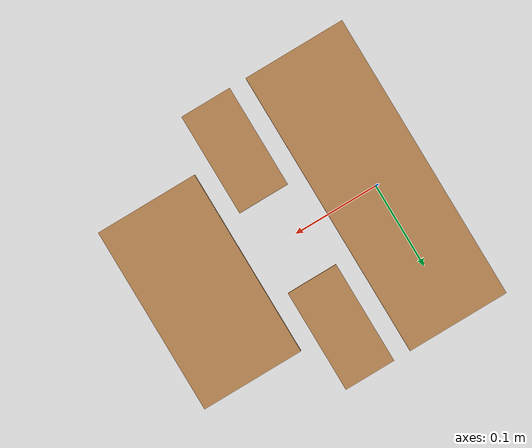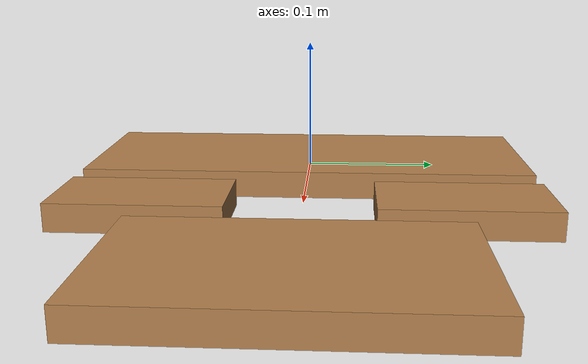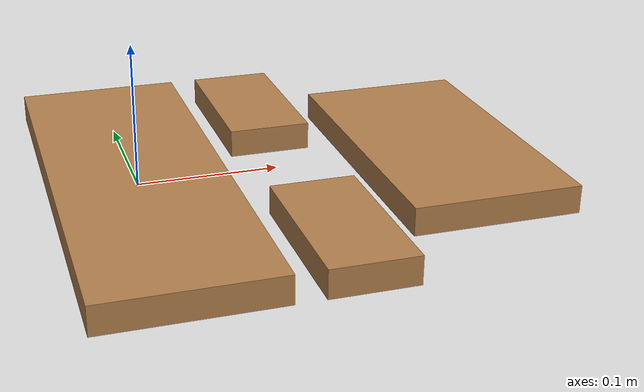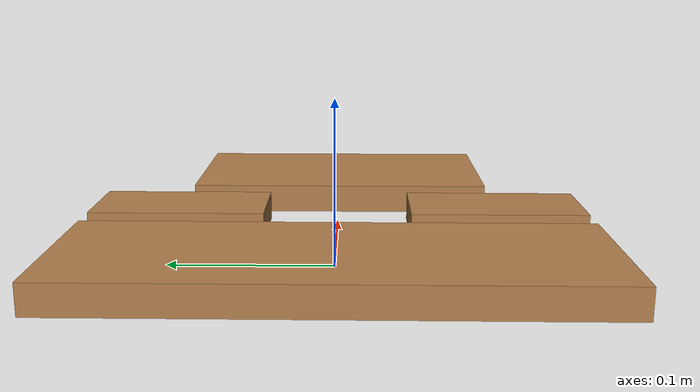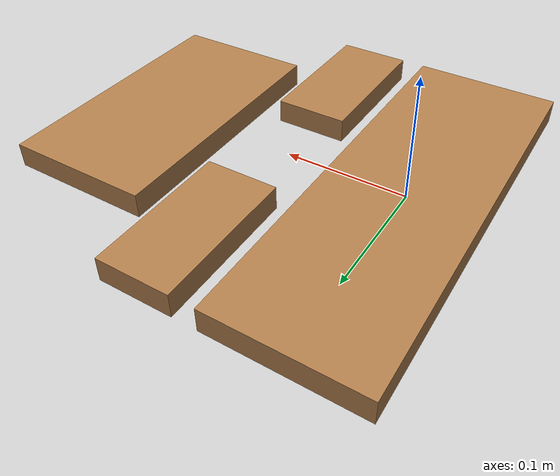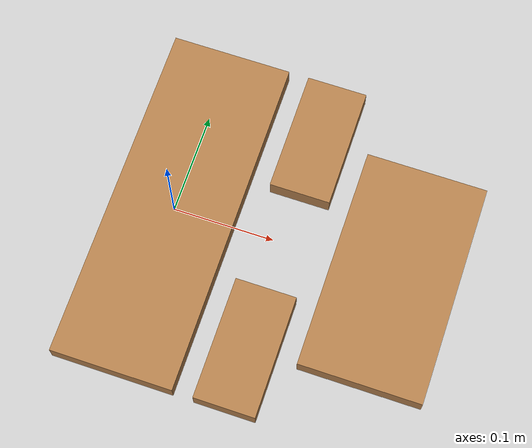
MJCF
<mujoco model="hole">
  <asset>
    <texture file="../textures/red-wood.png" type="cube" name="red-wood" />
    <material name="plate_mat" texture="red-wood" texrepeat="3 3" specular="0.4" shininess="0.1" />
  </asset>
  <worldbody>
    <body>
      <body name="object">
        <geom pos="0 0 0" size="0.06 0.17 0.01" type="box" group="0" material="plate_mat" />
        <geom pos="0.22 0 0" size="0.06 0.11 0.01" type="box" group="0" material="plate_mat" />
        <geom pos="0.11 0.11 0" size="0.03 0.06 0.01" type="box" group="0" material="plate_mat" />
        <geom pos="0.11 -0.11 0" size="0.03 0.06 0.01" type="box" group="0" material="plate_mat" />
      </body>
      <site rgba="0 0 0 0" size="0.005" pos="0 0 -0.02" name="bottom_site"/>
      <site rgba="0 0 0 0" size="0.005" pos="0 0 0.02" name="top_site"/>
      <site rgba="0 0 0 0" size="0.005" pos="0.25 0.25 0.1" name="horizontal_radius_site"/>
    </body>
  </worldbody>
</mujoco>
